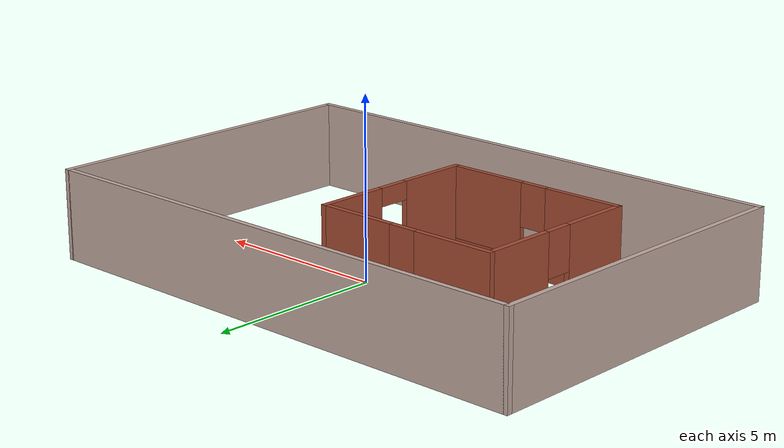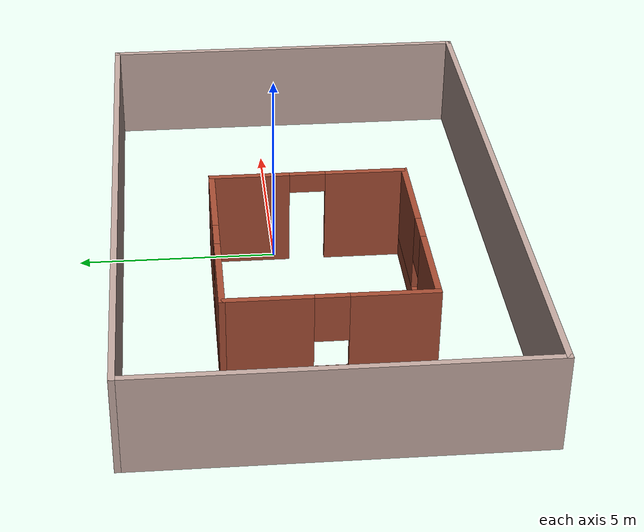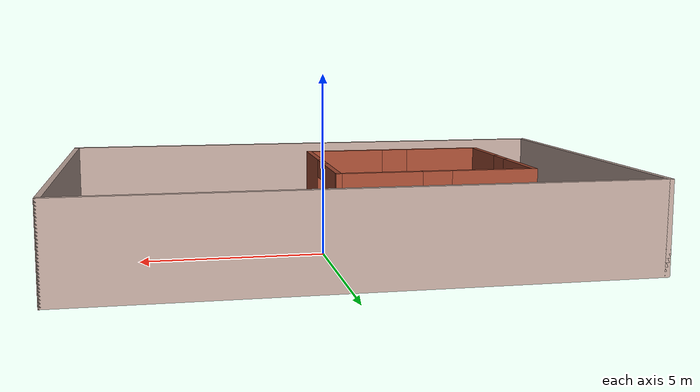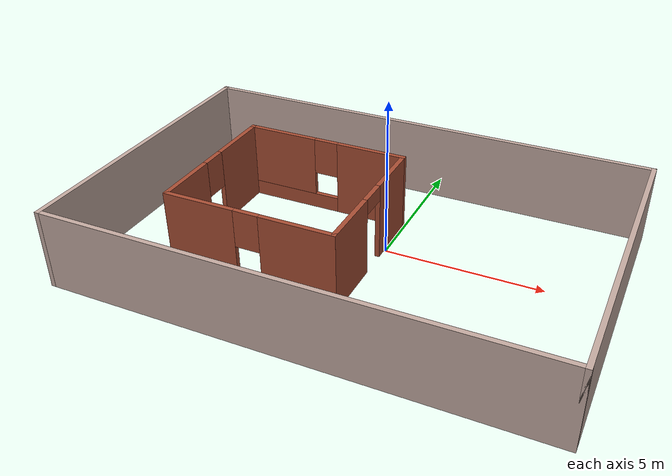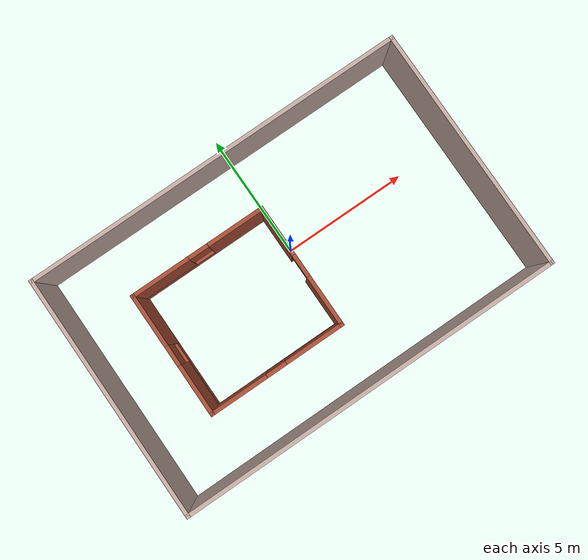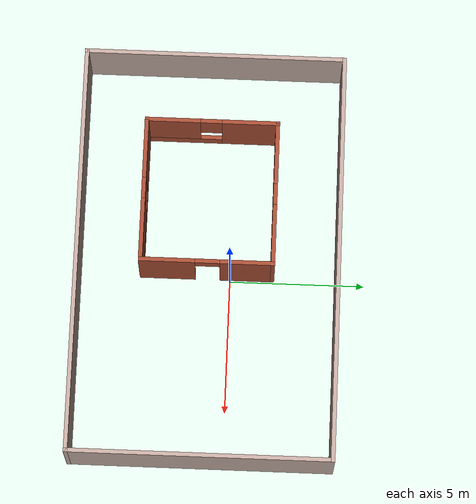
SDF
<?xml version='1.0'?>
<sdf version='1.6'>
  <model name='building'>
    <pose frame=''>-0.517096 -0.829022 0 0 -0 0</pose>
    <link name='Wall_0'>
      <collision name='Wall_0_Collision'>
        <geometry>
          <box>
            <size>9.75 0.15 2.5</size>
          </box>
        </geometry>
        <pose frame=''>0 0 1.25 0 -0 0</pose>
      </collision>
      <visual name='Wall_0_Visual'>
        <pose frame=''>0 0 1.25 0 -0 0</pose>
        <geometry>
          <box>
            <size>9.75 0.15 2.5</size>
          </box>
        </geometry>
        <material>
          <script>
            <uri>file://media/materials/scripts/gazebo.material</uri>
            <name>Gazebo/Grey</name>
          </script>
          <ambient>0.760784 0.662745 0.627451 1</ambient>
        </material>
        <meta>
          <layer>0</layer>
        </meta>
      </visual>
      <pose frame=''>-7.55 0 0 0 0 -1.5708</pose>
    </link>
    <link name='Wall_1'>
      <collision name='Wall_1_Collision'>
        <geometry>
          <box>
            <size>15.25 0.15 2.5</size>
          </box>
        </geometry>
        <pose frame=''>0 0 1.25 0 -0 0</pose>
      </collision>
      <visual name='Wall_1_Visual'>
        <pose frame=''>0 0 1.25 0 -0 0</pose>
        <geometry>
          <box>
            <size>15.25 0.15 2.5</size>
          </box>
        </geometry>
        <material>
          <script>
            <uri>file://media/materials/scripts/gazebo.material</uri>
            <name>Gazebo/Grey</name>
          </script>
          <ambient>0.760784 0.662745 0.627451 1</ambient>
        </material>
        <meta>
          <layer>0</layer>
        </meta>
      </visual>
      <pose frame=''>0 -4.8 0 0 -0 0</pose>
    </link>
    <link name='Wall_11'>
      <pose frame=''>0.384171 -0.024587 0 0 -0 1.5708</pose>
      <visual name='Wall_11_Visual_0'>
        <pose frame=''>-1.46229 0 1.25 0 -0 0</pose>
        <geometry>
          <box>
            <size>2.07541 0.15 2.5</size>
          </box>
        </geometry>
        <material>
          <script>
            <uri>file://media/materials/scripts/gazebo.material</uri>
            <name>Gazebo/Bricks</name>
          </script>
          <ambient>1 1 1 1</ambient>
        </material>
        <meta>
          <layer>0</layer>
        </meta>
      </visual>
      <collision name='Wall_11_Collision_0'>
        <geometry>
          <box>
            <size>2.07541 0.15 2.5</size>
          </box>
        </geometry>
        <pose frame=''>-1.46229 0 1.25 0 -0 0</pose>
      </collision>
      <visual name='Wall_11_Visual_1'>
        <pose frame=''>1.48771 0 1.25 0 -0 0</pose>
        <geometry>
          <box>
            <size>2.02459 0.15 2.5</size>
          </box>
        </geometry>
        <material>
          <script>
            <uri>file://media/materials/scripts/gazebo.material</uri>
            <name>Gazebo/Bricks</name>
          </script>
          <ambient>1 1 1 1</ambient>
        </material>
        <meta>
          <layer>0</layer>
        </meta>
      </visual>
      <collision name='Wall_11_Collision_1'>
        <geometry>
          <box>
            <size>2.02459 0.15 2.5</size>
          </box>
        </geometry>
        <pose frame=''>1.48771 0 1.25 0 -0 0</pose>
      </collision>
      <visual name='Wall_11_Visual_2'>
        <pose frame=''>0.025413 0 2.25 0 -0 0</pose>
        <geometry>
          <box>
            <size>0.9 0.15 0.5</size>
          </box>
        </geometry>
        <material>
          <script>
            <uri>file://media/materials/scripts/gazebo.material</uri>
            <name>Gazebo/Bricks</name>
          </script>
          <ambient>1 1 1 1</ambient>
        </material>
        <meta>
          <layer>0</layer>
        </meta>
      </visual>
      <collision name='Wall_11_Collision_2'>
        <geometry>
          <box>
            <size>0.9 0.15 0.5</size>
          </box>
        </geometry>
        <pose frame=''>0.025413 0 2.25 0 -0 0</pose>
      </collision>
    </link>
    <link name='Wall_12'>
      <pose frame=''>-2.29083 2.40041 0 0 -0 3.14159</pose>
      <visual name='Wall_12_Visual_0'>
        <pose frame=''>-1.59111 0 1.25 0 -0 0</pose>
        <geometry>
          <box>
            <size>2.31777 0.15 2.5</size>
          </box>
        </geometry>
        <material>
          <script>
            <uri>file://media/materials/scripts/gazebo.material</uri>
            <name>Gazebo/Bricks</name>
          </script>
          <ambient>1 1 1 1</ambient>
        </material>
        <meta>
          <layer>0</layer>
        </meta>
      </visual>
      <collision name='Wall_12_Collision_0'>
        <geometry>
          <box>
            <size>2.31777 0.15 2.5</size>
          </box>
        </geometry>
        <pose frame=''>-1.59111 0 1.25 0 -0 0</pose>
      </collision>
      <visual name='Wall_12_Visual_1'>
        <pose frame=''>1.15889 0 0.25 0 -0 0</pose>
        <geometry>
          <box>
            <size>3.18223 0.15 0.5</size>
          </box>
        </geometry>
        <material>
          <script>
            <uri>file://media/materials/scripts/gazebo.material</uri>
            <name>Gazebo/Bricks</name>
          </script>
          <ambient>1 1 1 1</ambient>
        </material>
        <meta>
          <layer>0</layer>
        </meta>
      </visual>
      <collision name='Wall_12_Collision_1'>
        <geometry>
          <box>
            <size>3.18223 0.15 0.5</size>
          </box>
        </geometry>
        <pose frame=''>1.15889 0 0.25 0 -0 0</pose>
      </collision>
      <visual name='Wall_12_Visual_2'>
        <pose frame=''>1.55889 0 1.5 0 -0 0</pose>
        <geometry>
          <box>
            <size>2.38223 0.15 2</size>
          </box>
        </geometry>
        <material>
          <script>
            <uri>file://media/materials/scripts/gazebo.material</uri>
            <name>Gazebo/Bricks</name>
          </script>
          <ambient>1 1 1 1</ambient>
        </material>
        <meta>
          <layer>0</layer>
        </meta>
      </visual>
      <collision name='Wall_12_Collision_2'>
        <geometry>
          <box>
            <size>2.38223 0.15 2</size>
          </box>
        </geometry>
        <pose frame=''>1.55889 0 1.5 0 -0 0</pose>
      </collision>
      <visual name='Wall_12_Visual_3'>
        <pose frame=''>-0.032227 0 1.9 0 -0 0</pose>
        <geometry>
          <box>
            <size>0.8 0.15 1.2</size>
          </box>
        </geometry>
        <material>
          <script>
            <uri>file://media/materials/scripts/gazebo.material</uri>
            <name>Gazebo/Bricks</name>
          </script>
          <ambient>1 1 1 1</ambient>
        </material>
        <meta>
          <layer>0</layer>
        </meta>
      </visual>
      <collision name='Wall_12_Collision_3'>
        <geometry>
          <box>
            <size>0.8 0.15 1.2</size>
          </box>
        </geometry>
        <pose frame=''>-0.032227 0 1.9 0 -0 0</pose>
      </collision>
    </link>
    <link name='Wall_4'>
      <collision name='Wall_4_Collision'>
        <geometry>
          <box>
            <size>15.25 0.15 2.5</size>
          </box>
        </geometry>
        <pose frame=''>0 0 1.25 0 -0 0</pose>
      </collision>
      <visual name='Wall_4_Visual'>
        <pose frame=''>0 0 1.25 0 -0 0</pose>
        <geometry>
          <box>
            <size>15.25 0.15 2.5</size>
          </box>
        </geometry>
        <material>
          <script>
            <uri>file://media/materials/scripts/gazebo.material</uri>
            <name>Gazebo/Grey</name>
          </script>
          <ambient>0.760784 0.662745 0.627451 1</ambient>
        </material>
        <meta>
          <layer>0</layer>
        </meta>
      </visual>
      <pose frame=''>0 4.8 0 0 -0 0</pose>
    </link>
    <link name='Wall_5'>
      <collision name='Wall_5_Collision'>
        <geometry>
          <box>
            <size>9.75 0.15 2.5</size>
          </box>
        </geometry>
        <pose frame=''>0 0 1.25 0 -0 0</pose>
      </collision>
      <visual name='Wall_5_Visual'>
        <pose frame=''>0 0 1.25 0 -0 0</pose>
        <geometry>
          <box>
            <size>9.75 0.15 2.5</size>
          </box>
        </geometry>
        <material>
          <script>
            <uri>file://media/materials/scripts/gazebo.material</uri>
            <name>Gazebo/Grey</name>
          </script>
          <ambient>0.760784 0.662745 0.627451 1</ambient>
        </material>
        <meta>
          <layer>0</layer>
        </meta>
      </visual>
      <pose frame=''>7.55 0 0 0 0 -1.5708</pose>
    </link>
    <link name='Wall_7'>
      <pose frame=''>-4.96583 -0.024587 0 0 0 -1.5708</pose>
      <visual name='Wall_7_Visual_0'>
        <pose frame=''>-1.43194 0 1.25 0 -0 0</pose>
        <geometry>
          <box>
            <size>2.13612 0.15 2.5</size>
          </box>
        </geometry>
        <material>
          <script>
            <uri>file://media/materials/scripts/gazebo.material</uri>
            <name>Gazebo/Bricks</name>
          </script>
          <ambient>1 1 1 1</ambient>
        </material>
        <meta>
          <layer>0</layer>
        </meta>
      </visual>
      <collision name='Wall_7_Collision_0'>
        <geometry>
          <box>
            <size>2.13612 0.15 2.5</size>
          </box>
        </geometry>
        <pose frame=''>-1.43194 0 1.25 0 -0 0</pose>
      </collision>
      <visual name='Wall_7_Visual_1'>
        <pose frame=''>1.06806 0 0.25 0 -0 0</pose>
        <geometry>
          <box>
            <size>2.86388 0.15 0.5</size>
          </box>
        </geometry>
        <material>
          <script>
            <uri>file://media/materials/scripts/gazebo.material</uri>
            <name>Gazebo/Bricks</name>
          </script>
          <ambient>1 1 1 1</ambient>
        </material>
        <meta>
          <layer>0</layer>
        </meta>
      </visual>
      <collision name='Wall_7_Collision_1'>
        <geometry>
          <box>
            <size>2.86388 0.15 0.5</size>
          </box>
        </geometry>
        <pose frame=''>1.06806 0 0.25 0 -0 0</pose>
      </collision>
      <visual name='Wall_7_Visual_2'>
        <pose frame=''>1.46806 0 1.5 0 -0 0</pose>
        <geometry>
          <box>
            <size>2.06388 0.15 2</size>
          </box>
        </geometry>
        <material>
          <script>
            <uri>file://media/materials/scripts/gazebo.material</uri>
            <name>Gazebo/Bricks</name>
          </script>
          <ambient>1 1 1 1</ambient>
        </material>
        <meta>
          <layer>0</layer>
        </meta>
      </visual>
      <collision name='Wall_7_Collision_2'>
        <geometry>
          <box>
            <size>2.06388 0.15 2</size>
          </box>
        </geometry>
        <pose frame=''>1.46806 0 1.5 0 -0 0</pose>
      </collision>
      <visual name='Wall_7_Visual_3'>
        <pose frame=''>0.036115 0 1.9 0 -0 0</pose>
        <geometry>
          <box>
            <size>0.8 0.15 1.2</size>
          </box>
        </geometry>
        <material>
          <script>
            <uri>file://media/materials/scripts/gazebo.material</uri>
            <name>Gazebo/Bricks</name>
          </script>
          <ambient>1 1 1 1</ambient>
        </material>
        <meta>
          <layer>0</layer>
        </meta>
      </visual>
      <collision name='Wall_7_Collision_3'>
        <geometry>
          <box>
            <size>0.8 0.15 1.2</size>
          </box>
        </geometry>
        <pose frame=''>0.036115 0 1.9 0 -0 0</pose>
      </collision>
    </link>
    <link name='Wall_8'>
      <pose frame=''>-2.29083 -2.44959 0 0 -0 0</pose>
      <visual name='Wall_8_Visual_0'>
        <pose frame=''>-1.58965 0 1.25 0 -0 0</pose>
        <geometry>
          <box>
            <size>2.3207 0.15 2.5</size>
          </box>
        </geometry>
        <material>
          <script>
            <uri>file://media/materials/scripts/gazebo.material</uri>
            <name>Gazebo/Bricks</name>
          </script>
          <ambient>1 1 1 1</ambient>
        </material>
        <meta>
          <layer>0</layer>
        </meta>
      </visual>
      <collision name='Wall_8_Collision_0'>
        <geometry>
          <box>
            <size>2.3207 0.15 2.5</size>
          </box>
        </geometry>
        <pose frame=''>-1.58965 0 1.25 0 -0 0</pose>
      </collision>
      <visual name='Wall_8_Visual_1'>
        <pose frame=''>1.16035 0 0.25 0 -0 0</pose>
        <geometry>
          <box>
            <size>3.1793 0.15 0.5</size>
          </box>
        </geometry>
        <material>
          <script>
            <uri>file://media/materials/scripts/gazebo.material</uri>
            <name>Gazebo/Bricks</name>
          </script>
          <ambient>1 1 1 1</ambient>
        </material>
        <meta>
          <layer>0</layer>
        </meta>
      </visual>
      <collision name='Wall_8_Collision_1'>
        <geometry>
          <box>
            <size>3.1793 0.15 0.5</size>
          </box>
        </geometry>
        <pose frame=''>1.16035 0 0.25 0 -0 0</pose>
      </collision>
      <visual name='Wall_8_Visual_2'>
        <pose frame=''>1.56035 0 1.5 0 -0 0</pose>
        <geometry>
          <box>
            <size>2.3793 0.15 2</size>
          </box>
        </geometry>
        <material>
          <script>
            <uri>file://media/materials/scripts/gazebo.material</uri>
            <name>Gazebo/Bricks</name>
          </script>
          <ambient>1 1 1 1</ambient>
        </material>
        <meta>
          <layer>0</layer>
        </meta>
      </visual>
      <collision name='Wall_8_Collision_2'>
        <geometry>
          <box>
            <size>2.3793 0.15 2</size>
          </box>
        </geometry>
        <pose frame=''>1.56035 0 1.5 0 -0 0</pose>
      </collision>
      <visual name='Wall_8_Visual_3'>
        <pose frame=''>-0.029301 0 1.9 0 -0 0</pose>
        <geometry>
          <box>
            <size>0.8 0.15 1.2</size>
          </box>
        </geometry>
        <material>
          <script>
            <uri>file://media/materials/scripts/gazebo.material</uri>
            <name>Gazebo/Bricks</name>
          </script>
          <ambient>1 1 1 1</ambient>
        </material>
        <meta>
          <layer>0</layer>
        </meta>
      </visual>
      <collision name='Wall_8_Collision_3'>
        <geometry>
          <box>
            <size>0.8 0.15 1.2</size>
          </box>
        </geometry>
        <pose frame=''>-0.029301 0 1.9 0 -0 0</pose>
      </collision>
    </link>
    <static>1</static>
  </model>
</sdf>
